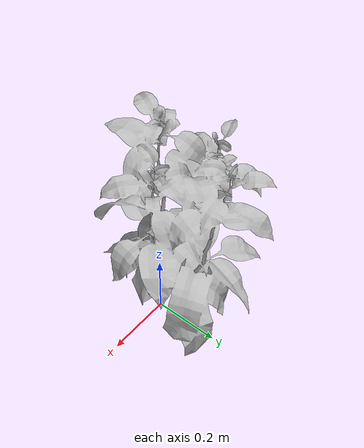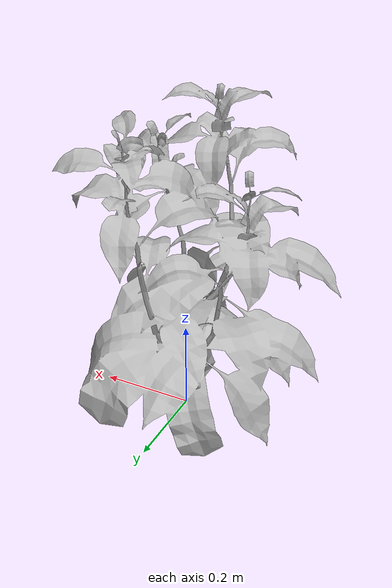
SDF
<?xml version='1.0'?>
<sdf version='1.6'>
  <model name='capsicum_plant_6_no_fruits'>
    <link name='link_capsicum_plant_6_no_fruits'>
       <visual name='visual'>
        <pose frame=''>0 0 0 0 0 0</pose>
        <geometry>
          <mesh>
            <uri>model://capsicum_plant_6_no_fruits/meshes/VG07_6_no_fruits.dae</uri>
          </mesh>
        </geometry>
      </visual>
    </link>
    <static>1</static>
  </model>
</sdf>
